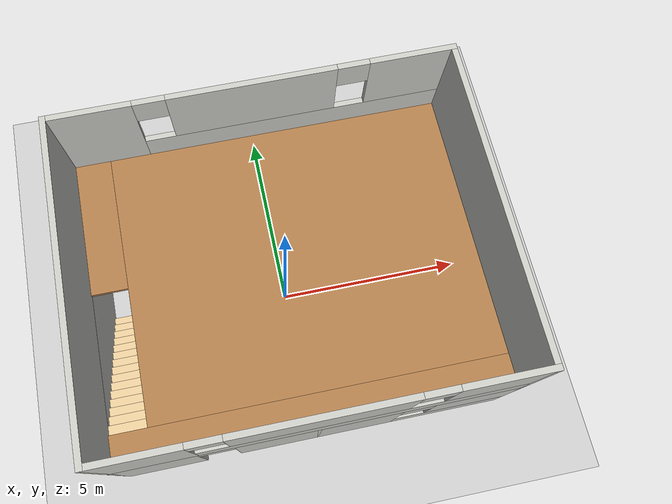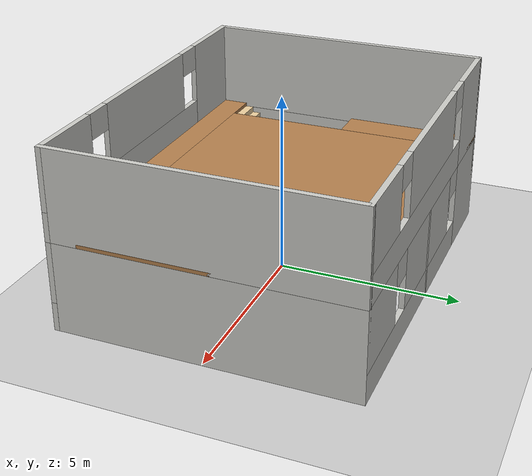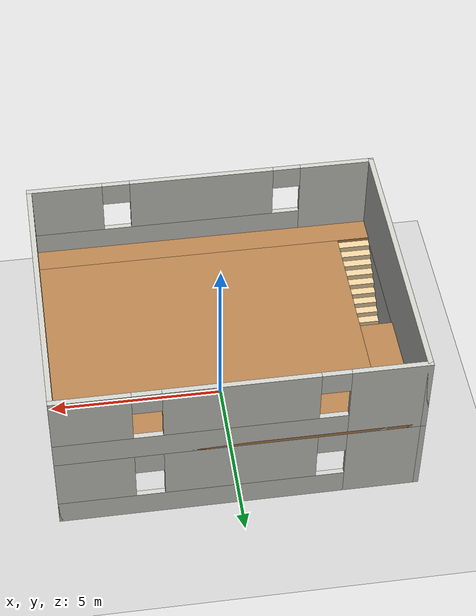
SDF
<?xml version="1.0" ?>
<sdf version="1.5">
  <world name="default">

    <!-- A global light source -->
    <include>
      <uri>model://sun</uri>
    </include>

    <!-- A ground plane -->
    <include>
      <uri>model://ground_plane</uri>
    </include>

    <include>
      <uri>model://two_floors_house</uri>
    </include>

    <light type="spot" name="room_1">
      <pose>2.5 0 1.6 0 0 0</pose>
      <spot>
        <outer_angle>3.14</outer_angle>
      </spot>
      <attenuation>
        <range>5</range>
        <quadratic>0.1</quadratic>
      </attenuation>
      <diffuse>204 204 204 255</diffuse>
      <specular>51 51 51 255</specular>
      <cast_shadows>false</cast_shadows>
    </light>

    <light type="spot" name="room_2">
      <pose>-2.5 0 1.6 0 0 0</pose>
      <spot>
        <outer_angle>3.14</outer_angle>
      </spot>
      <attenuation>
        <range>5</range>
        <quadratic>0.1</quadratic>
      </attenuation>
      <diffuse>204 204 204 255</diffuse>
      <specular>51 51 51 255</specular>
      <cast_shadows>false</cast_shadows>
    </light>

  </world>
</sdf>

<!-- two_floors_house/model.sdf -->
<sdf version='1.6'>
  <model name='two_floors_house'>
    <pose frame=''>0 0 0 0 -0 0</pose>
    <link name='Floor_0'>
      <pose frame=''>0 0 2.5 0 -0 0</pose>
      <visual name='Floor_0_Visual_0'>
        <pose frame=''>-5.03162 0 0.05 0 -0 0</pose>
        <geometry>
          <box>
            <size>0.08676 8.15 0.1</size>
          </box>
        </geometry>
        <material>
          <script>
            <uri>file://media/materials/scripts/gazebo.material</uri>
            <name>Gazebo/Wood</name>
          </script>
          <ambient>1 1 1 1</ambient>
        </material>
        <meta>
          <layer>1</layer>
        </meta>
      </visual>
      <collision name='Floor_0_Collision_0'>
        <geometry>
          <box>
            <size>0.08676 8.15 0.1</size>
          </box>
        </geometry>
        <pose frame=''>-5.03162 0 0.05 0 -0 0</pose>
      </collision>
      <visual name='Floor_0_Visual_1'>
        <pose frame=''>0.04338 -3.64153 0.05 0 -0 0</pose>
        <geometry>
          <box>
            <size>10.0632 0.866936 0.1</size>
          </box>
        </geometry>
        <material>
          <script>
            <uri>file://media/materials/scripts/gazebo.material</uri>
            <name>Gazebo/Wood</name>
          </script>
          <ambient>1 1 1 1</ambient>
        </material>
        <meta>
          <layer>1</layer>
        </meta>
      </visual>
      <collision name='Floor_0_Collision_1'>
        <geometry>
          <box>
            <size>10.0632 0.866936 0.1</size>
          </box>
        </geometry>
        <pose frame=''>0.04338 -3.64153 0.05 0 -0 0</pose>
      </collision>
      <visual name='Floor_0_Visual_2'>
        <pose frame=''>0.54338 0.433468 0.05 0 -0 0</pose>
        <geometry>
          <box>
            <size>9.06324 7.28306 0.1</size>
          </box>
        </geometry>
        <material>
          <script>
            <uri>file://media/materials/scripts/gazebo.material</uri>
            <name>Gazebo/Wood</name>
          </script>
          <ambient>1 1 1 1</ambient>
        </material>
        <meta>
          <layer>1</layer>
        </meta>
      </visual>
      <collision name='Floor_0_Collision_2'>
        <geometry>
          <box>
            <size>9.06324 7.28306 0.1</size>
          </box>
        </geometry>
        <pose frame=''>0.54338 0.433468 0.05 0 -0 0</pose>
      </collision>
      <visual name='Floor_0_Visual_3'>
        <pose frame=''>-4.48824 2.18347 0.05 0 -0 0</pose>
        <geometry>
          <box>
            <size>1 3.78306 0.1</size>
          </box>
        </geometry>
        <material>
          <script>
            <uri>file://media/materials/scripts/gazebo.material</uri>
            <name>Gazebo/Wood</name>
          </script>
          <ambient>1 1 1 1</ambient>
        </material>
        <meta>
          <layer>1</layer>
        </meta>
      </visual>
      <collision name='Floor_0_Collision_3'>
        <geometry>
          <box>
            <size>1 3.78306 0.1</size>
          </box>
        </geometry>
        <pose frame=''>-4.48824 2.18347 0.05 0 -0 0</pose>
      </collision>
    </link>
    <link name='Stairs_3'>
      <visual name='Stairs_3_Visual_0'>
        <pose frame=''>-4.48824 0.175269 0.083333 0 -0 0</pose>
        <geometry>
          <box>
            <size>1 0.233333 0.166667</size>
          </box>
        </geometry>
        <material>
          <script>
            <uri>file://media/materials/scripts/gazebo.material</uri>
            <name>Gazebo/Grey</name>
          </script>
          <ambient>0.921569 0.807843 0.615686 1</ambient>
        </material>
        <meta>
          <layer>0</layer>
        </meta>
      </visual>
      <collision name='Stairs_3_Collision_0'>
        <geometry>
          <box>
            <size>1 0.233333 0.166667</size>
          </box>
        </geometry>
        <pose frame=''>-4.48824 0.175269 0.083333 0 -0 0</pose>
      </collision>
      <visual name='Stairs_3_Visual_1'>
        <pose frame=''>-4.48824 -0.058064 0.25 0 -0 0</pose>
        <geometry>
          <box>
            <size>1 0.233333 0.166667</size>
          </box>
        </geometry>
        <material>
          <script>
            <uri>file://media/materials/scripts/gazebo.material</uri>
            <name>Gazebo/Grey</name>
          </script>
          <ambient>0.921569 0.807843 0.615686 1</ambient>
        </material>
        <meta>
          <layer>0</layer>
        </meta>
      </visual>
      <collision name='Stairs_3_Collision_1'>
        <geometry>
          <box>
            <size>1 0.233333 0.166667</size>
          </box>
        </geometry>
        <pose frame=''>-4.48824 -0.058064 0.25 0 -0 0</pose>
      </collision>
      <visual name='Stairs_3_Visual_2'>
        <pose frame=''>-4.48824 -0.291397 0.416667 0 -0 0</pose>
        <geometry>
          <box>
            <size>1 0.233333 0.166667</size>
          </box>
        </geometry>
        <material>
          <script>
            <uri>file://media/materials/scripts/gazebo.material</uri>
            <name>Gazebo/Grey</name>
          </script>
          <ambient>0.921569 0.807843 0.615686 1</ambient>
        </material>
        <meta>
          <layer>0</layer>
        </meta>
      </visual>
      <collision name='Stairs_3_Collision_2'>
        <geometry>
          <box>
            <size>1 0.233333 0.166667</size>
          </box>
        </geometry>
        <pose frame=''>-4.48824 -0.291397 0.416667 0 -0 0</pose>
      </collision>
      <visual name='Stairs_3_Visual_3'>
        <pose frame=''>-4.48824 -0.52473 0.583333 0 -0 0</pose>
        <geometry>
          <box>
            <size>1 0.233333 0.166667</size>
          </box>
        </geometry>
        <material>
          <script>
            <uri>file://media/materials/scripts/gazebo.material</uri>
            <name>Gazebo/Grey</name>
          </script>
          <ambient>0.921569 0.807843 0.615686 1</ambient>
        </material>
        <meta>
          <layer>0</layer>
        </meta>
      </visual>
      <collision name='Stairs_3_Collision_3'>
        <geometry>
          <box>
            <size>1 0.233333 0.166667</size>
          </box>
        </geometry>
        <pose frame=''>-4.48824 -0.52473 0.583333 0 -0 0</pose>
      </collision>
      <visual name='Stairs_3_Visual_4'>
        <pose frame=''>-4.48824 -0.758064 0.75 0 -0 0</pose>
        <geometry>
          <box>
            <size>1 0.233333 0.166667</size>
          </box>
        </geometry>
        <material>
          <script>
            <uri>file://media/materials/scripts/gazebo.material</uri>
            <name>Gazebo/Grey</name>
          </script>
          <ambient>0.921569 0.807843 0.615686 1</ambient>
        </material>
        <meta>
          <layer>0</layer>
        </meta>
      </visual>
      <collision name='Stairs_3_Collision_4'>
        <geometry>
          <box>
            <size>1 0.233333 0.166667</size>
          </box>
        </geometry>
        <pose frame=''>-4.48824 -0.758064 0.75 0 -0 0</pose>
      </collision>
      <visual name='Stairs_3_Visual_5'>
        <pose frame=''>-4.48824 -0.991397 0.916667 0 -0 0</pose>
        <geometry>
          <box>
            <size>1 0.233333 0.166667</size>
          </box>
        </geometry>
        <material>
          <script>
            <uri>file://media/materials/scripts/gazebo.material</uri>
            <name>Gazebo/Grey</name>
          </script>
          <ambient>0.921569 0.807843 0.615686 1</ambient>
        </material>
        <meta>
          <layer>0</layer>
        </meta>
      </visual>
      <collision name='Stairs_3_Collision_5'>
        <geometry>
          <box>
            <size>1 0.233333 0.166667</size>
          </box>
        </geometry>
        <pose frame=''>-4.48824 -0.991397 0.916667 0 -0 0</pose>
      </collision>
      <visual name='Stairs_3_Visual_6'>
        <pose frame=''>-4.48824 -1.22473 1.08333 0 -0 0</pose>
        <geometry>
          <box>
            <size>1 0.233333 0.166667</size>
          </box>
        </geometry>
        <material>
          <script>
            <uri>file://media/materials/scripts/gazebo.material</uri>
            <name>Gazebo/Grey</name>
          </script>
          <ambient>0.921569 0.807843 0.615686 1</ambient>
        </material>
        <meta>
          <layer>0</layer>
        </meta>
      </visual>
      <collision name='Stairs_3_Collision_6'>
        <geometry>
          <box>
            <size>1 0.233333 0.166667</size>
          </box>
        </geometry>
        <pose frame=''>-4.48824 -1.22473 1.08333 0 -0 0</pose>
      </collision>
      <visual name='Stairs_3_Visual_7'>
        <pose frame=''>-4.48824 -1.45806 1.25 0 -0 0</pose>
        <geometry>
          <box>
            <size>1 0.233333 0.166667</size>
          </box>
        </geometry>
        <material>
          <script>
            <uri>file://media/materials/scripts/gazebo.material</uri>
            <name>Gazebo/Grey</name>
          </script>
          <ambient>0.921569 0.807843 0.615686 1</ambient>
        </material>
        <meta>
          <layer>0</layer>
        </meta>
      </visual>
      <collision name='Stairs_3_Collision_7'>
        <geometry>
          <box>
            <size>1 0.233333 0.166667</size>
          </box>
        </geometry>
        <pose frame=''>-4.48824 -1.45806 1.25 0 -0 0</pose>
      </collision>
      <visual name='Stairs_3_Visual_8'>
        <pose frame=''>-4.48824 -1.6914 1.41667 0 -0 0</pose>
        <geometry>
          <box>
            <size>1 0.233333 0.166667</size>
          </box>
        </geometry>
        <material>
          <script>
            <uri>file://media/materials/scripts/gazebo.material</uri>
            <name>Gazebo/Grey</name>
          </script>
          <ambient>0.921569 0.807843 0.615686 1</ambient>
        </material>
        <meta>
          <layer>0</layer>
        </meta>
      </visual>
      <collision name='Stairs_3_Collision_8'>
        <geometry>
          <box>
            <size>1 0.233333 0.166667</size>
          </box>
        </geometry>
        <pose frame=''>-4.48824 -1.6914 1.41667 0 -0 0</pose>
      </collision>
      <visual name='Stairs_3_Visual_9'>
        <pose frame=''>-4.48824 -1.92473 1.58333 0 -0 0</pose>
        <geometry>
          <box>
            <size>1 0.233333 0.166667</size>
          </box>
        </geometry>
        <material>
          <script>
            <uri>file://media/materials/scripts/gazebo.material</uri>
            <name>Gazebo/Grey</name>
          </script>
          <ambient>0.921569 0.807843 0.615686 1</ambient>
        </material>
        <meta>
          <layer>0</layer>
        </meta>
      </visual>
      <collision name='Stairs_3_Collision_9'>
        <geometry>
          <box>
            <size>1 0.233333 0.166667</size>
          </box>
        </geometry>
        <pose frame=''>-4.48824 -1.92473 1.58333 0 -0 0</pose>
      </collision>
      <visual name='Stairs_3_Visual_10'>
        <pose frame=''>-4.48824 -2.15806 1.75 0 -0 0</pose>
        <geometry>
          <box>
            <size>1 0.233333 0.166667</size>
          </box>
        </geometry>
        <material>
          <script>
            <uri>file://media/materials/scripts/gazebo.material</uri>
            <name>Gazebo/Grey</name>
          </script>
          <ambient>0.921569 0.807843 0.615686 1</ambient>
        </material>
        <meta>
          <layer>0</layer>
        </meta>
      </visual>
      <collision name='Stairs_3_Collision_10'>
        <geometry>
          <box>
            <size>1 0.233333 0.166667</size>
          </box>
        </geometry>
        <pose frame=''>-4.48824 -2.15806 1.75 0 -0 0</pose>
      </collision>
      <visual name='Stairs_3_Visual_11'>
        <pose frame=''>-4.48824 -2.3914 1.91667 0 -0 0</pose>
        <geometry>
          <box>
            <size>1 0.233333 0.166667</size>
          </box>
        </geometry>
        <material>
          <script>
            <uri>file://media/materials/scripts/gazebo.material</uri>
            <name>Gazebo/Grey</name>
          </script>
          <ambient>0.921569 0.807843 0.615686 1</ambient>
        </material>
        <meta>
          <layer>0</layer>
        </meta>
      </visual>
      <collision name='Stairs_3_Collision_11'>
        <geometry>
          <box>
            <size>1 0.233333 0.166667</size>
          </box>
        </geometry>
        <pose frame=''>-4.48824 -2.3914 1.91667 0 -0 0</pose>
      </collision>
      <visual name='Stairs_3_Visual_12'>
        <pose frame=''>-4.48824 -2.62473 2.08333 0 -0 0</pose>
        <geometry>
          <box>
            <size>1 0.233333 0.166667</size>
          </box>
        </geometry>
        <material>
          <script>
            <uri>file://media/materials/scripts/gazebo.material</uri>
            <name>Gazebo/Grey</name>
          </script>
          <ambient>0.921569 0.807843 0.615686 1</ambient>
        </material>
        <meta>
          <layer>0</layer>
        </meta>
      </visual>
      <collision name='Stairs_3_Collision_12'>
        <geometry>
          <box>
            <size>1 0.233333 0.166667</size>
          </box>
        </geometry>
        <pose frame=''>-4.48824 -2.62473 2.08333 0 -0 0</pose>
      </collision>
      <visual name='Stairs_3_Visual_13'>
        <pose frame=''>-4.48824 -2.85806 2.25 0 -0 0</pose>
        <geometry>
          <box>
            <size>1 0.233333 0.166667</size>
          </box>
        </geometry>
        <material>
          <script>
            <uri>file://media/materials/scripts/gazebo.material</uri>
            <name>Gazebo/Grey</name>
          </script>
          <ambient>0.921569 0.807843 0.615686 1</ambient>
        </material>
        <meta>
          <layer>0</layer>
        </meta>
      </visual>
      <collision name='Stairs_3_Collision_13'>
        <geometry>
          <box>
            <size>1 0.233333 0.166667</size>
          </box>
        </geometry>
        <pose frame=''>-4.48824 -2.85806 2.25 0 -0 0</pose>
      </collision>
      <visual name='Stairs_3_Visual_14'>
        <pose frame=''>-4.48824 -3.0914 2.41667 0 -0 0</pose>
        <geometry>
          <box>
            <size>1 0.233333 0.166667</size>
          </box>
        </geometry>
        <material>
          <script>
            <uri>file://media/materials/scripts/gazebo.material</uri>
            <name>Gazebo/Grey</name>
          </script>
          <ambient>0.921569 0.807843 0.615686 1</ambient>
        </material>
        <meta>
          <layer>0</layer>
        </meta>
      </visual>
      <collision name='Stairs_3_Collision_14'>
        <geometry>
          <box>
            <size>1 0.233333 0.166667</size>
          </box>
        </geometry>
        <pose frame=''>-4.48824 -3.0914 2.41667 0 -0 0</pose>
      </collision>
    </link>
    <link name='Wall_0'>
      <pose frame=''>0 -4 0 0 -0 0</pose>
      <visual name='Wall_0_Visual_0'>
        <pose frame=''>-4.0125 0 1.25 0 -0 0</pose>
        <geometry>
          <box>
            <size>2.125 0.15 2.5</size>
          </box>
        </geometry>
        <material>
          <script>
            <uri>file://media/materials/scripts/gazebo.material</uri>
            <name>Gazebo/CeilingTiled</name>
          </script>
          <ambient>0.921569 0.807843 0.615686 1</ambient>
        </material>
        <meta>
          <layer>0</layer>
        </meta>
      </visual>
      <collision name='Wall_0_Collision_0'>
        <geometry>
          <box>
            <size>2.125 0.15 2.5</size>
          </box>
        </geometry>
        <pose frame=''>-4.0125 0 1.25 0 -0 0</pose>
      </collision>
      <visual name='Wall_0_Visual_1'>
        <pose frame=''>0.025 0 1.25 0 -0 0</pose>
        <geometry>
          <box>
            <size>4.15 0.15 2.5</size>
          </box>
        </geometry>
        <material>
          <script>
            <uri>file://media/materials/scripts/gazebo.material</uri>
            <name>Gazebo/CeilingTiled</name>
          </script>
          <ambient>0.921569 0.807843 0.615686 1</ambient>
        </material>
        <meta>
          <layer>0</layer>
        </meta>
      </visual>
      <collision name='Wall_0_Collision_1'>
        <geometry>
          <box>
            <size>4.15 0.15 2.5</size>
          </box>
        </geometry>
        <pose frame=''>0.025 0 1.25 0 -0 0</pose>
      </collision>
      <visual name='Wall_0_Visual_2'>
        <pose frame=''>3.5875 0 0.4 0 -0 0</pose>
        <geometry>
          <box>
            <size>2.975 0.15 0.8</size>
          </box>
        </geometry>
        <material>
          <script>
            <uri>file://media/materials/scripts/gazebo.material</uri>
            <name>Gazebo/CeilingTiled</name>
          </script>
          <ambient>0.921569 0.807843 0.615686 1</ambient>
        </material>
        <meta>
          <layer>0</layer>
        </meta>
      </visual>
      <collision name='Wall_0_Collision_2'>
        <geometry>
          <box>
            <size>2.975 0.15 0.8</size>
          </box>
        </geometry>
        <pose frame=''>3.5875 0 0.4 0 -0 0</pose>
      </collision>
      <visual name='Wall_0_Visual_3'>
        <pose frame=''>3.9875 0 1.65 0 -0 0</pose>
        <geometry>
          <box>
            <size>2.175 0.15 1.7</size>
          </box>
        </geometry>
        <material>
          <script>
            <uri>file://media/materials/scripts/gazebo.material</uri>
            <name>Gazebo/CeilingTiled</name>
          </script>
          <ambient>0.921569 0.807843 0.615686 1</ambient>
        </material>
        <meta>
          <layer>0</layer>
        </meta>
      </visual>
      <collision name='Wall_0_Collision_3'>
        <geometry>
          <box>
            <size>2.175 0.15 1.7</size>
          </box>
        </geometry>
        <pose frame=''>3.9875 0 1.65 0 -0 0</pose>
      </collision>
      <visual name='Wall_0_Visual_4'>
        <pose frame=''>2.5 0 2.15 0 -0 0</pose>
        <geometry>
          <box>
            <size>0.8 0.15 0.7</size>
          </box>
        </geometry>
        <material>
          <script>
            <uri>file://media/materials/scripts/gazebo.material</uri>
            <name>Gazebo/CeilingTiled</name>
          </script>
          <ambient>0.921569 0.807843 0.615686 1</ambient>
        </material>
        <meta>
          <layer>0</layer>
        </meta>
      </visual>
      <collision name='Wall_0_Collision_4'>
        <geometry>
          <box>
            <size>0.8 0.15 0.7</size>
          </box>
        </geometry>
        <pose frame=''>2.5 0 2.15 0 -0 0</pose>
      </collision>
      <visual name='Wall_0_Visual_5'>
        <pose frame=''>-2.5 0 2.25 0 -0 0</pose>
        <geometry>
          <box>
            <size>0.9 0.15 0.5</size>
          </box>
        </geometry>
        <material>
          <script>
            <uri>file://media/materials/scripts/gazebo.material</uri>
            <name>Gazebo/CeilingTiled</name>
          </script>
          <ambient>0.921569 0.807843 0.615686 1</ambient>
        </material>
        <meta>
          <layer>0</layer>
        </meta>
      </visual>
      <collision name='Wall_0_Collision_5'>
        <geometry>
          <box>
            <size>0.9 0.15 0.5</size>
          </box>
        </geometry>
        <pose frame=''>-2.5 0 2.25 0 -0 0</pose>
      </collision>
    </link>
    <link name='Wall_11'>
      <pose frame=''>0 -4 2.5 0 -0 0</pose>
      <visual name='Wall_11_Visual_0'>
        <pose frame=''>-3.9875 0 1.25 0 -0 0</pose>
        <geometry>
          <box>
            <size>2.175 0.15 2.5</size>
          </box>
        </geometry>
        <material>
          <script>
            <uri>file://media/materials/scripts/gazebo.material</uri>
            <name>Gazebo/CeilingTiled</name>
          </script>
          <ambient>0.921569 0.807843 0.615686 1</ambient>
        </material>
        <meta>
          <layer>1</layer>
        </meta>
      </visual>
      <collision name='Wall_11_Collision_0'>
        <geometry>
          <box>
            <size>2.175 0.15 2.5</size>
          </box>
        </geometry>
        <pose frame=''>-3.9875 0 1.25 0 -0 0</pose>
      </collision>
      <visual name='Wall_11_Visual_1'>
        <pose frame=''>1.0875 0 0.4 0 -0 0</pose>
        <geometry>
          <box>
            <size>7.975 0.15 0.8</size>
          </box>
        </geometry>
        <material>
          <script>
            <uri>file://media/materials/scripts/gazebo.material</uri>
            <name>Gazebo/CeilingTiled</name>
          </script>
          <ambient>0.921569 0.807843 0.615686 1</ambient>
        </material>
        <meta>
          <layer>1</layer>
        </meta>
      </visual>
      <collision name='Wall_11_Collision_1'>
        <geometry>
          <box>
            <size>7.975 0.15 0.8</size>
          </box>
        </geometry>
        <pose frame=''>1.0875 0 0.4 0 -0 0</pose>
      </collision>
      <visual name='Wall_11_Visual_2'>
        <pose frame=''>0 0 1.65 0 -0 0</pose>
        <geometry>
          <box>
            <size>4.2 0.15 1.7</size>
          </box>
        </geometry>
        <material>
          <script>
            <uri>file://media/materials/scripts/gazebo.material</uri>
            <name>Gazebo/CeilingTiled</name>
          </script>
          <ambient>0.921569 0.807843 0.615686 1</ambient>
        </material>
        <meta>
          <layer>1</layer>
        </meta>
      </visual>
      <collision name='Wall_11_Collision_2'>
        <geometry>
          <box>
            <size>4.2 0.15 1.7</size>
          </box>
        </geometry>
        <pose frame=''>0 0 1.65 0 -0 0</pose>
      </collision>
      <visual name='Wall_11_Visual_3'>
        <pose frame=''>3.9875 0 1.65 0 -0 0</pose>
        <geometry>
          <box>
            <size>2.175 0.15 1.7</size>
          </box>
        </geometry>
        <material>
          <script>
            <uri>file://media/materials/scripts/gazebo.material</uri>
            <name>Gazebo/CeilingTiled</name>
          </script>
          <ambient>0.921569 0.807843 0.615686 1</ambient>
        </material>
        <meta>
          <layer>1</layer>
        </meta>
      </visual>
      <collision name='Wall_11_Collision_3'>
        <geometry>
          <box>
            <size>2.175 0.15 1.7</size>
          </box>
        </geometry>
        <pose frame=''>3.9875 0 1.65 0 -0 0</pose>
      </collision>
      <visual name='Wall_11_Visual_4'>
        <pose frame=''>-2.5 0 2.15 0 -0 0</pose>
        <geometry>
          <box>
            <size>0.8 0.15 0.7</size>
          </box>
        </geometry>
        <material>
          <script>
            <uri>file://media/materials/scripts/gazebo.material</uri>
            <name>Gazebo/CeilingTiled</name>
          </script>
          <ambient>0.921569 0.807843 0.615686 1</ambient>
        </material>
        <meta>
          <layer>1</layer>
        </meta>
      </visual>
      <collision name='Wall_11_Collision_4'>
        <geometry>
          <box>
            <size>0.8 0.15 0.7</size>
          </box>
        </geometry>
        <pose frame=''>-2.5 0 2.15 0 -0 0</pose>
      </collision>
      <visual name='Wall_11_Visual_5'>
        <pose frame=''>2.5 0 2.15 0 -0 0</pose>
        <geometry>
          <box>
            <size>0.8 0.15 0.7</size>
          </box>
        </geometry>
        <material>
          <script>
            <uri>file://media/materials/scripts/gazebo.material</uri>
            <name>Gazebo/CeilingTiled</name>
          </script>
          <ambient>0.921569 0.807843 0.615686 1</ambient>
        </material>
        <meta>
          <layer>1</layer>
        </meta>
      </visual>
      <collision name='Wall_11_Collision_5'>
        <geometry>
          <box>
            <size>0.8 0.15 0.7</size>
          </box>
        </geometry>
        <pose frame=''>2.5 0 2.15 0 -0 0</pose>
      </collision>
    </link>
    <link name='Wall_12'>
      <collision name='Wall_12_Collision'>
        <geometry>
          <box>
            <size>8.15 0.15 2.5</size>
          </box>
        </geometry>
        <pose frame=''>0 0 1.25 0 -0 0</pose>
      </collision>
      <visual name='Wall_12_Visual'>
        <pose frame=''>0 0 1.25 0 -0 0</pose>
        <geometry>
          <box>
            <size>8.15 0.15 2.5</size>
          </box>
        </geometry>
        <material>
          <script>
            <uri>file://media/materials/scripts/gazebo.material</uri>
            <name>Gazebo/CeilingTiled</name>
          </script>
          <ambient>0.921569 0.807843 0.615686 1</ambient>
        </material>
        <meta>
          <layer>1</layer>
        </meta>
      </visual>
      <pose frame=''>-5 0 2.5 0 -0 1.5708</pose>
    </link>
    <link name='Wall_13'>
      <pose frame=''>0 4 2.5 0 -0 0</pose>
      <visual name='Wall_13_Visual_0'>
        <pose frame=''>-3.9875 0 1.25 0 -0 0</pose>
        <geometry>
          <box>
            <size>2.175 0.15 2.5</size>
          </box>
        </geometry>
        <material>
          <script>
            <uri>file://media/materials/scripts/gazebo.material</uri>
            <name>Gazebo/CeilingTiled</name>
          </script>
          <ambient>0.921569 0.807843 0.615686 1</ambient>
        </material>
        <meta>
          <layer>1</layer>
        </meta>
      </visual>
      <collision name='Wall_13_Collision_0'>
        <geometry>
          <box>
            <size>2.175 0.15 2.5</size>
          </box>
        </geometry>
        <pose frame=''>-3.9875 0 1.25 0 -0 0</pose>
      </collision>
      <visual name='Wall_13_Visual_1'>
        <pose frame=''>1.0875 0 0.4 0 -0 0</pose>
        <geometry>
          <box>
            <size>7.975 0.15 0.8</size>
          </box>
        </geometry>
        <material>
          <script>
            <uri>file://media/materials/scripts/gazebo.material</uri>
            <name>Gazebo/CeilingTiled</name>
          </script>
          <ambient>0.921569 0.807843 0.615686 1</ambient>
        </material>
        <meta>
          <layer>1</layer>
        </meta>
      </visual>
      <collision name='Wall_13_Collision_1'>
        <geometry>
          <box>
            <size>7.975 0.15 0.8</size>
          </box>
        </geometry>
        <pose frame=''>1.0875 0 0.4 0 -0 0</pose>
      </collision>
      <visual name='Wall_13_Visual_2'>
        <pose frame=''>0 0 1.65 0 -0 0</pose>
        <geometry>
          <box>
            <size>4.2 0.15 1.7</size>
          </box>
        </geometry>
        <material>
          <script>
            <uri>file://media/materials/scripts/gazebo.material</uri>
            <name>Gazebo/CeilingTiled</name>
          </script>
          <ambient>0.921569 0.807843 0.615686 1</ambient>
        </material>
        <meta>
          <layer>1</layer>
        </meta>
      </visual>
      <collision name='Wall_13_Collision_2'>
        <geometry>
          <box>
            <size>4.2 0.15 1.7</size>
          </box>
        </geometry>
        <pose frame=''>0 0 1.65 0 -0 0</pose>
      </collision>
      <visual name='Wall_13_Visual_3'>
        <pose frame=''>3.9875 0 1.65 0 -0 0</pose>
        <geometry>
          <box>
            <size>2.175 0.15 1.7</size>
          </box>
        </geometry>
        <material>
          <script>
            <uri>file://media/materials/scripts/gazebo.material</uri>
            <name>Gazebo/CeilingTiled</name>
          </script>
          <ambient>0.921569 0.807843 0.615686 1</ambient>
        </material>
        <meta>
          <layer>1</layer>
        </meta>
      </visual>
      <collision name='Wall_13_Collision_3'>
        <geometry>
          <box>
            <size>2.175 0.15 1.7</size>
          </box>
        </geometry>
        <pose frame=''>3.9875 0 1.65 0 -0 0</pose>
      </collision>
      <visual name='Wall_13_Visual_4'>
        <pose frame=''>-2.5 0 2.15 0 -0 0</pose>
        <geometry>
          <box>
            <size>0.8 0.15 0.7</size>
          </box>
        </geometry>
        <material>
          <script>
            <uri>file://media/materials/scripts/gazebo.material</uri>
            <name>Gazebo/CeilingTiled</name>
          </script>
          <ambient>0.921569 0.807843 0.615686 1</ambient>
        </material>
        <meta>
          <layer>1</layer>
        </meta>
      </visual>
      <collision name='Wall_13_Collision_4'>
        <geometry>
          <box>
            <size>0.8 0.15 0.7</size>
          </box>
        </geometry>
        <pose frame=''>-2.5 0 2.15 0 -0 0</pose>
      </collision>
      <visual name='Wall_13_Visual_5'>
        <pose frame=''>2.5 0 2.15 0 -0 0</pose>
        <geometry>
          <box>
            <size>0.8 0.15 0.7</size>
          </box>
        </geometry>
        <material>
          <script>
            <uri>file://media/materials/scripts/gazebo.material</uri>
            <name>Gazebo/CeilingTiled</name>
          </script>
          <ambient>0.921569 0.807843 0.615686 1</ambient>
        </material>
        <meta>
          <layer>1</layer>
        </meta>
      </visual>
      <collision name='Wall_13_Collision_5'>
        <geometry>
          <box>
            <size>0.8 0.15 0.7</size>
          </box>
        </geometry>
        <pose frame=''>2.5 0 2.15 0 -0 0</pose>
      </collision>
    </link>
    <link name='Wall_14'>
      <collision name='Wall_14_Collision'>
        <geometry>
          <box>
            <size>8.15 0.15 2.5</size>
          </box>
        </geometry>
        <pose frame=''>0 0 1.25 0 -0 0</pose>
      </collision>
      <visual name='Wall_14_Visual'>
        <pose frame=''>0 0 1.25 0 -0 0</pose>
        <geometry>
          <box>
            <size>8.15 0.15 2.5</size>
          </box>
        </geometry>
        <material>
          <script>
            <uri>file://media/materials/scripts/gazebo.material</uri>
            <name>Gazebo/CeilingTiled</name>
          </script>
          <ambient>0.921569 0.807843 0.615686 1</ambient>
        </material>
        <meta>
          <layer>1</layer>
        </meta>
      </visual>
      <pose frame=''>5 0 2.5 0 -0 -1.5708</pose>
    </link>
    <link name='Wall_4'>
      <collision name='Wall_4_Collision'>
        <geometry>
          <box>
            <size>8.15 0.15 2.5</size>
          </box>
        </geometry>
        <pose frame=''>0 0 1.25 0 -0 0</pose>
      </collision>
      <visual name='Wall_4_Visual'>
        <pose frame=''>0 0 1.25 0 -0 0</pose>
        <geometry>
          <box>
            <size>8.15 0.15 2.5</size>
          </box>
        </geometry>
        <material>
          <script>
            <uri>file://media/materials/scripts/gazebo.material</uri>
            <name>Gazebo/CeilingTiled</name>
          </script>
          <ambient>0.921569 0.807843 0.615686 1</ambient>
        </material>
        <meta>
          <layer>0</layer>
        </meta>
      </visual>
      <pose frame=''>-5 0 0 0 -0 1.5708</pose>
    </link>
    <link name='Wall_5'>
      <pose frame=''>0 4 0 0 -0 0</pose>
      <visual name='Wall_5_Visual_0'>
        <pose frame=''>-3.9875 0 1.25 0 -0 0</pose>
        <geometry>
          <box>
            <size>2.175 0.15 2.5</size>
          </box>
        </geometry>
        <material>
          <script>
            <uri>file://media/materials/scripts/gazebo.material</uri>
            <name>Gazebo/CeilingTiled</name>
          </script>
          <ambient>0.921569 0.807843 0.615686 1</ambient>
        </material>
        <meta>
          <layer>0</layer>
        </meta>
      </visual>
      <collision name='Wall_5_Collision_0'>
        <geometry>
          <box>
            <size>2.175 0.15 2.5</size>
          </box>
        </geometry>
        <pose frame=''>-3.9875 0 1.25 0 -0 0</pose>
      </collision>
      <visual name='Wall_5_Visual_1'>
        <pose frame=''>1.0875 0 0.4 0 -0 0</pose>
        <geometry>
          <box>
            <size>7.975 0.15 0.8</size>
          </box>
        </geometry>
        <material>
          <script>
            <uri>file://media/materials/scripts/gazebo.material</uri>
            <name>Gazebo/CeilingTiled</name>
          </script>
          <ambient>0.921569 0.807843 0.615686 1</ambient>
        </material>
        <meta>
          <layer>0</layer>
        </meta>
      </visual>
      <collision name='Wall_5_Collision_1'>
        <geometry>
          <box>
            <size>7.975 0.15 0.8</size>
          </box>
        </geometry>
        <pose frame=''>1.0875 0 0.4 0 -0 0</pose>
      </collision>
      <visual name='Wall_5_Visual_2'>
        <pose frame=''>0 0 1.65 0 -0 0</pose>
        <geometry>
          <box>
            <size>4.2 0.15 1.7</size>
          </box>
        </geometry>
        <material>
          <script>
            <uri>file://media/materials/scripts/gazebo.material</uri>
            <name>Gazebo/CeilingTiled</name>
          </script>
          <ambient>0.921569 0.807843 0.615686 1</ambient>
        </material>
        <meta>
          <layer>0</layer>
        </meta>
      </visual>
      <collision name='Wall_5_Collision_2'>
        <geometry>
          <box>
            <size>4.2 0.15 1.7</size>
          </box>
        </geometry>
        <pose frame=''>0 0 1.65 0 -0 0</pose>
      </collision>
      <visual name='Wall_5_Visual_3'>
        <pose frame=''>3.9875 0 1.65 0 -0 0</pose>
        <geometry>
          <box>
            <size>2.175 0.15 1.7</size>
          </box>
        </geometry>
        <material>
          <script>
            <uri>file://media/materials/scripts/gazebo.material</uri>
            <name>Gazebo/CeilingTiled</name>
          </script>
          <ambient>0.921569 0.807843 0.615686 1</ambient>
        </material>
        <meta>
          <layer>0</layer>
        </meta>
      </visual>
      <collision name='Wall_5_Collision_3'>
        <geometry>
          <box>
            <size>2.175 0.15 1.7</size>
          </box>
        </geometry>
        <pose frame=''>3.9875 0 1.65 0 -0 0</pose>
      </collision>
      <visual name='Wall_5_Visual_4'>
        <pose frame=''>-2.5 0 2.15 0 -0 0</pose>
        <geometry>
          <box>
            <size>0.8 0.15 0.7</size>
          </box>
        </geometry>
        <material>
          <script>
            <uri>file://media/materials/scripts/gazebo.material</uri>
            <name>Gazebo/CeilingTiled</name>
          </script>
          <ambient>0.921569 0.807843 0.615686 1</ambient>
        </material>
        <meta>
          <layer>0</layer>
        </meta>
      </visual>
      <collision name='Wall_5_Collision_4'>
        <geometry>
          <box>
            <size>0.8 0.15 0.7</size>
          </box>
        </geometry>
        <pose frame=''>-2.5 0 2.15 0 -0 0</pose>
      </collision>
      <visual name='Wall_5_Visual_5'>
        <pose frame=''>2.5 0 2.15 0 -0 0</pose>
        <geometry>
          <box>
            <size>0.8 0.15 0.7</size>
          </box>
        </geometry>
        <material>
          <script>
            <uri>file://media/materials/scripts/gazebo.material</uri>
            <name>Gazebo/CeilingTiled</name>
          </script>
          <ambient>0.921569 0.807843 0.615686 1</ambient>
        </material>
        <meta>
          <layer>0</layer>
        </meta>
      </visual>
      <collision name='Wall_5_Collision_5'>
        <geometry>
          <box>
            <size>0.8 0.15 0.7</size>
          </box>
        </geometry>
        <pose frame=''>2.5 0 2.15 0 -0 0</pose>
      </collision>
    </link>
    <link name='Wall_7'>
      <collision name='Wall_7_Collision'>
        <geometry>
          <box>
            <size>8.15 0.15 2.5</size>
          </box>
        </geometry>
        <pose frame=''>0 0 1.25 0 -0 0</pose>
      </collision>
      <visual name='Wall_7_Visual'>
        <pose frame=''>0 0 1.25 0 -0 0</pose>
        <geometry>
          <box>
            <size>8.15 0.15 2.5</size>
          </box>
        </geometry>
        <material>
          <script>
            <uri>file://media/materials/scripts/gazebo.material</uri>
            <name>Gazebo/CeilingTiled</name>
          </script>
          <ambient>0.921569 0.807843 0.615686 1</ambient>
        </material>
        <meta>
          <layer>0</layer>
        </meta>
      </visual>
      <pose frame=''>5 0 0 0 -0 -1.5708</pose>
    </link>
    <link name='Wall_9'>
      <pose frame=''>0 0 0 0 -0 -1.5708</pose>
      <visual name='Wall_9_Visual_0'>
        <pose frame=''>-2.2625 0 1.25 0 -0 0</pose>
        <geometry>
          <box>
            <size>3.625 0.15 2.5</size>
          </box>
        </geometry>
        <material>
          <script>
            <uri>file://media/materials/scripts/gazebo.material</uri>
            <name>Gazebo/CeilingTiled</name>
          </script>
          <ambient>0.921569 0.807843 0.615686 1</ambient>
        </material>
        <meta>
          <layer>0</layer>
        </meta>
      </visual>
      <collision name='Wall_9_Collision_0'>
        <geometry>
          <box>
            <size>3.625 0.15 2.5</size>
          </box>
        </geometry>
        <pose frame=''>-2.2625 0 1.25 0 -0 0</pose>
      </collision>
      <visual name='Wall_9_Visual_1'>
        <pose frame=''>2.2625 0 1.25 0 -0 0</pose>
        <geometry>
          <box>
            <size>3.625 0.15 2.5</size>
          </box>
        </geometry>
        <material>
          <script>
            <uri>file://media/materials/scripts/gazebo.material</uri>
            <name>Gazebo/CeilingTiled</name>
          </script>
          <ambient>0.921569 0.807843 0.615686 1</ambient>
        </material>
        <meta>
          <layer>0</layer>
        </meta>
      </visual>
      <collision name='Wall_9_Collision_1'>
        <geometry>
          <box>
            <size>3.625 0.15 2.5</size>
          </box>
        </geometry>
        <pose frame=''>2.2625 0 1.25 0 -0 0</pose>
      </collision>
      <visual name='Wall_9_Visual_2'>
        <pose frame=''>0 0 2.25 0 -0 0</pose>
        <geometry>
          <box>
            <size>0.9 0.15 0.5</size>
          </box>
        </geometry>
        <material>
          <script>
            <uri>file://media/materials/scripts/gazebo.material</uri>
            <name>Gazebo/CeilingTiled</name>
          </script>
          <ambient>0.921569 0.807843 0.615686 1</ambient>
        </material>
        <meta>
          <layer>0</layer>
        </meta>
      </visual>
      <collision name='Wall_9_Collision_2'>
        <geometry>
          <box>
            <size>0.9 0.15 0.5</size>
          </box>
        </geometry>
        <pose frame=''>0 0 2.25 0 -0 0</pose>
      </collision>
    </link>
    <static>1</static>
  </model>
</sdf>
